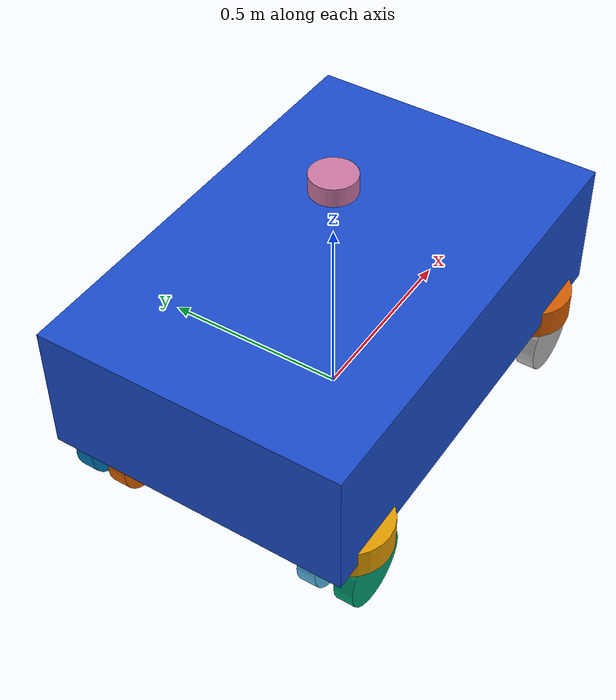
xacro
<?xml version="1.0"?>
<robot xmlns:xacro="http://www.ros.org/wiki/xacro" name="differential_swerve_agv">
  <xacro:property name="wheel_radius" value="0.10"/><xacro:property name="wheel_width" value="0.05"/>
  <link name="base_footprint"/>
  <link name="base_link"><visual><geometry><box size="1.2 0.8 0.35"/></geometry><material name="blue"><color rgba="0.1 0.3 0.8 1"/></material></visual><collision><origin xyz="0 0 0.05"/><geometry><box size="1.2 0.8 0.25"/></geometry></collision><inertial><mass value="60.0"/><origin xyz="0 0 0"/><inertia ixx="3.8125" ixy="0" ixz="0" iyy="7.8125" iyz="0" izz="10.4"/></inertial></link>
  <joint name="base_footprint_joint" type="fixed"><parent link="base_footprint"/><child link="base_link"/><origin xyz="0 0 0.275"/></joint>
  <xacro:macro name="module" params="id x y">
    <link name="module_${id}_carrier"><visual><geometry><cylinder radius="0.11" length="0.08"/></geometry></visual><collision><geometry><cylinder radius="0.11" length="0.08"/></geometry></collision><inertial><mass value="5"/><inertia ixx="0.03" ixy="0" ixz="0" iyy="0.03" iyz="0" izz="0.04"/></inertial></link>
    <joint name="module_${id}_steering_joint" type="continuous"><parent link="base_link"/><child link="module_${id}_carrier"/><origin xyz="${x} ${y} -0.175"/><axis xyz="0 0 1"/><dynamics damping="1.0" friction="0.05"/></joint>
    <xacro:wheel id="${id}" side="left" offset="0.05" axis="1"/><xacro:wheel id="${id}" side="right" offset="-0.05" axis="-1"/>
  </xacro:macro>
  <xacro:macro name="wheel" params="id side offset axis">
    <link name="module_${id}_${side}_wheel"><visual><geometry><cylinder radius="${wheel_radius}" length="${wheel_width}"/></geometry></visual><collision><geometry><cylinder radius="${wheel_radius}" length="${wheel_width}"/></geometry></collision><inertial><mass value="2"/><inertia ixx="0.005416666666666667" ixy="0" ixz="0" iyy="0.005416666666666667" iyz="0" izz="0.01"/></inertial></link>
    <joint name="module_${id}_${side}_wheel_joint" type="continuous"><parent link="module_${id}_carrier"/><child link="module_${id}_${side}_wheel"/><origin xyz="0 ${offset} -0.10" rpy="${-axis*pi/2} 0 0"/><axis xyz="0 0 1"/><dynamics damping="0.05"/></joint>
    <gazebo reference="module_${id}_${side}_wheel"><mu1>1.3</mu1><mu2>1.3</mu2><kp>500000.0</kp><kd>10.0</kd><maxVel>0.1</maxVel><minDepth>0.001</minDepth></gazebo>
  </xacro:macro>
  <xacro:module id="1" x="0.45" y="0.325"/><xacro:module id="2" x="0.45" y="-0.325"/><xacro:module id="3" x="-0.45" y="-0.325"/><xacro:module id="4" x="-0.45" y="0.325"/>
  <link name="laser_frame"><visual><geometry><cylinder radius="0.06" length="0.05"/></geometry></visual><inertial><mass value="0.5"/><inertia ixx="0.001" ixy="0" ixz="0" iyy="0.001" iyz="0" izz="0.001"/></inertial></link>
  <joint name="laser_joint" type="fixed"><parent link="base_link"/><child link="laser_frame"/><origin xyz="0 0 0.375"/></joint>
  <link name="imu_link"/><joint name="imu_joint" type="fixed"><parent link="base_link"/><child link="imu_link"/></joint>
  <link name="gps_link"/><joint name="gps_joint" type="fixed"><parent link="base_link"/><child link="gps_link"/><origin xyz="0 0 0.4"/></joint>
  <gazebo reference="laser_frame"><sensor name="lidar" type="gpu_lidar"><topic>scan</topic><update_rate>10</update_rate><lidar><scan><horizontal><samples>720</samples><resolution>1</resolution><min_angle>-3.14159265</min_angle><max_angle>3.14159265</max_angle></horizontal></scan><range><min>0.10</min><max>20.0</max><resolution>0.01</resolution></range><noise><type>gaussian</type><mean>0</mean><stddev>0.01</stddev></noise></lidar><always_on>true</always_on><visualize>true</visualize></sensor></gazebo>
  <ros2_control name="GazeboSystem" type="system"><hardware><plugin>gz_ros2_control/GazeboSimSystem</plugin></hardware>
    <joint name="module_1_steering_joint"><state_interface name="position"/><state_interface name="velocity"/></joint>
    <joint name="module_2_steering_joint"><state_interface name="position"/><state_interface name="velocity"/></joint>
    <joint name="module_3_steering_joint"><state_interface name="position"/><state_interface name="velocity"/></joint>
    <joint name="module_4_steering_joint"><state_interface name="position"/><state_interface name="velocity"/></joint>
    <xacro:macro name="control_wheel" params="id side"><joint name="module_${id}_${side}_wheel_joint"><command_interface name="velocity"><param name="min">-40</param><param name="max">40</param></command_interface><state_interface name="position"/><state_interface name="velocity"/></joint></xacro:macro>
    <xacro:control_wheel id="1" side="left"/><xacro:control_wheel id="1" side="right"/><xacro:control_wheel id="2" side="left"/><xacro:control_wheel id="2" side="right"/><xacro:control_wheel id="3" side="left"/><xacro:control_wheel id="3" side="right"/><xacro:control_wheel id="4" side="left"/><xacro:control_wheel id="4" side="right"/>
  </ros2_control>
  <gazebo><plugin filename="gz_ros2_control-system" name="gz_ros2_control::GazeboSimROS2ControlPlugin"><parameters>$(find agv_description)/config/ros2_controllers.yaml</parameters></plugin></gazebo>
</robot>
